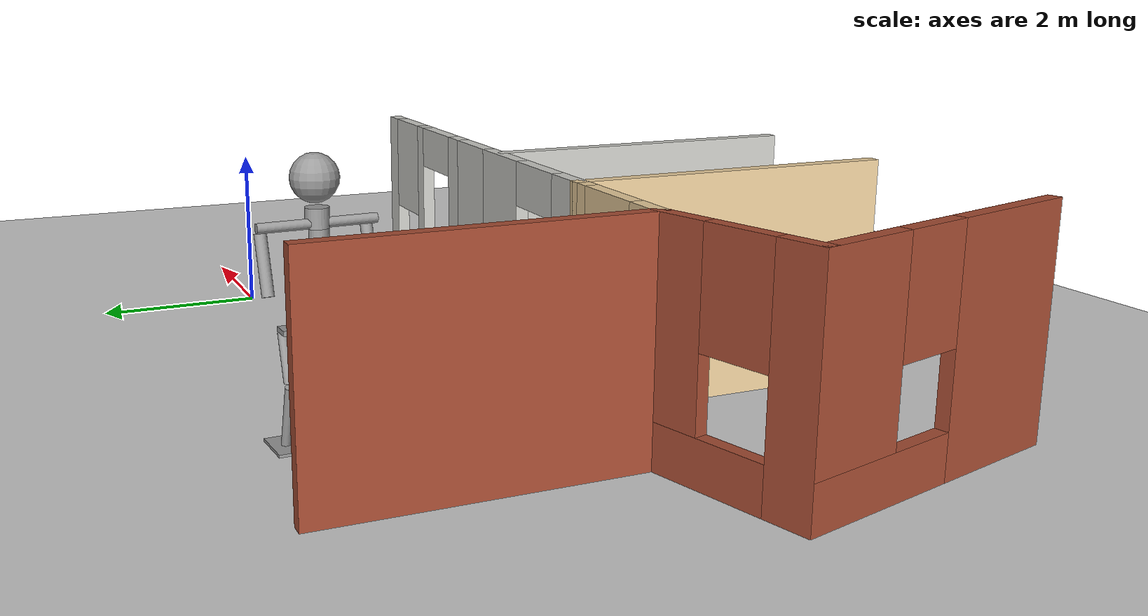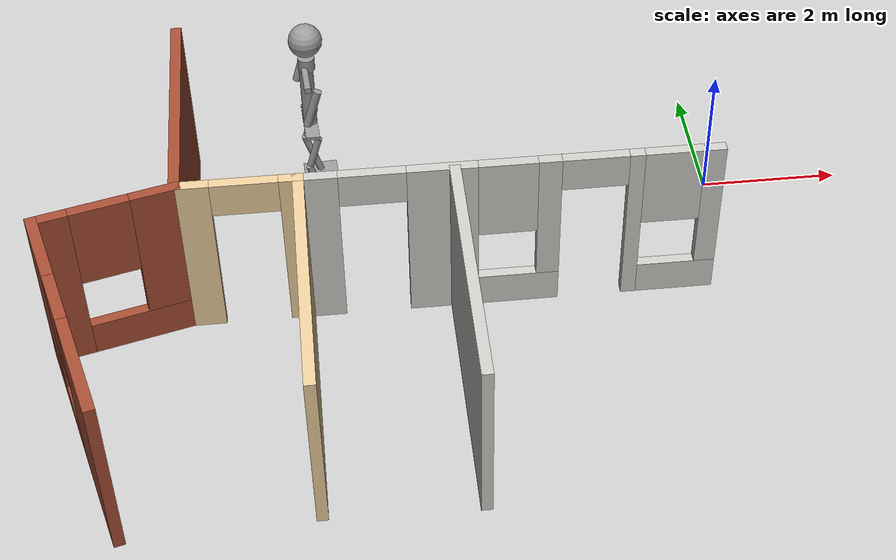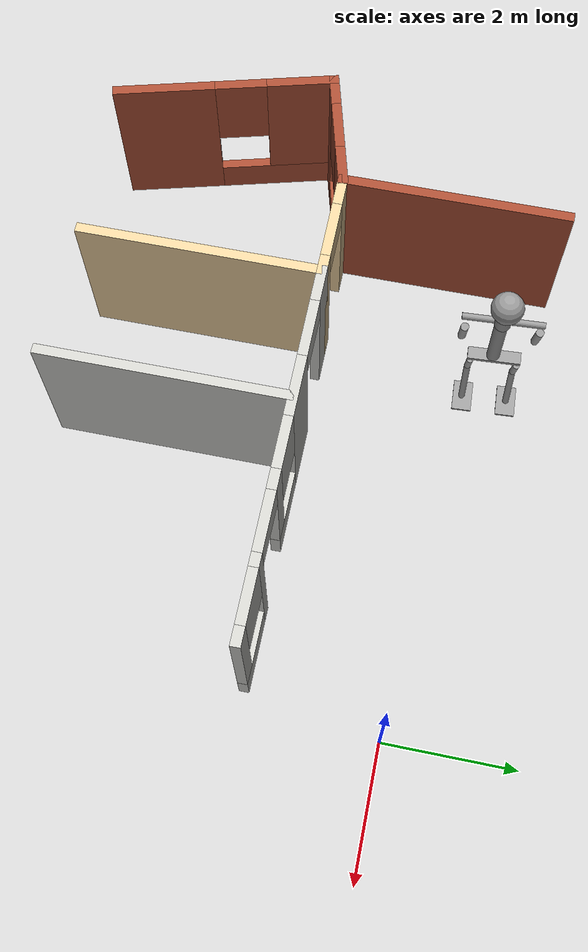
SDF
<sdf version="1.6">
 <world name="default">
  <model name="ground_plane">
   <static>1</static>
   <link name="link">
    <collision name="collision">
     <geometry><plane><normal>0 0 1</normal><size>100 100</size></plane></geometry>
     <surface><friction><ode><mu>100</mu><mu2>50</mu2></ode></friction></surface>
    </collision>
    <visual name="visual">
     <cast_shadows>0</cast_shadows>
     <geometry><plane><normal>0 0 1</normal><size>100 100</size></plane></geometry>
     <material>
      <script><uri>file://media/materials/scripts/gazebo.material</uri><name>Gazebo/Grey</name></script>
     </material>
    </visual>
   </link>
  </model>
  <model name="Building">
   <pose>-0.293126 -0.203944 0 0 -0 0</pose>
   <link name="Wall_11">
    <pose>-6.52017 -1.84669 0 0 -0 0</pose>
    <visual name="Wall_11_Visual_0">
     <pose>-0.613993 0 1.25 0 -0 0</pose>
     <geometry><box><size>0.522013 0.15 2.5</size></box></geometry>
     <material>
      <script><uri>file://media/materials/scripts/gazebo.material</uri><name>Gazebo/Grey</name></script>
      <ambient>0.921569 0.807843 0.615686 1</ambient>
     </material>
     <meta><layer>0</layer></meta>
    </visual>
    <collision name="Wall_11_Collision_0">
     <geometry><box><size>0.522013 0.15 2.5</size></box></geometry>
     <pose>-0.613993 0 1.25 0 -0 0</pose>
    </collision>
    <visual name="Wall_11_Visual_1">
     <pose>0.711007 0 1.25 0 -0 0</pose>
     <geometry><box><size>0.327987 0.15 2.5</size></box></geometry>
     <material>
      <script><uri>file://media/materials/scripts/gazebo.material</uri><name>Gazebo/Grey</name></script>
      <ambient>0.921569 0.807843 0.615686 1</ambient>
     </material>
     <meta><layer>0</layer></meta>
    </visual>
    <collision name="Wall_11_Collision_1">
     <geometry><box><size>0.327987 0.15 2.5</size></box></geometry>
     <pose>0.711007 0 1.25 0 -0 0</pose>
    </collision>
    <visual name="Wall_11_Visual_2">
     <pose>0.097013 0 2.25 0 -0 0</pose>
     <geometry><box><size>0.9 0.15 0.5</size></box></geometry>
     <material>
      <script><uri>file://media/materials/scripts/gazebo.material</uri><name>Gazebo/Grey</name></script>
      <ambient>0.921569 0.807843 0.615686 1</ambient>
     </material>
     <meta><layer>0</layer></meta>
    </visual>
    <collision name="Wall_11_Collision_2">
     <geometry><box><size>0.9 0.15 0.5</size></box></geometry>
     <pose>0.097013 0 2.25 0 -0 0</pose>
    </collision>
   </link>
   <link name="Wall_12">
    <collision name="Wall_12_Collision">
     <geometry><box><size>3.75 0.15 2.5</size></box></geometry>
     <pose>0 0 1.25 0 -0 0</pose>
    </collision>
    <visual name="Wall_12_Visual">
     <pose>0 0 1.25 0 -0 0</pose>
     <geometry><box><size>3.75 0.15 2.5</size></box></geometry>
     <material>
      <script><uri>file://media/materials/scripts/gazebo.material</uri><name>Gazebo/Grey</name></script>
      <ambient>0.921569 0.807843 0.615686 1</ambient>
     </material>
     <meta><layer>0</layer></meta>
    </visual>
    <pose>-5.72017 -3.64669 0 0 0 -1.5708</pose>
   </link>
   <link name="Wall_14">
    <pose>-2.92017 -1.84669 0 0 -0 0</pose>
    <visual name="Wall_14_Visual_0">
     <pose>-2.58082 0 1.25 0 -0 0</pose>
     <geometry><box><size>0.588363 0.15 2.5</size></box></geometry>
     <material>
      <script><uri>file://media/materials/scripts/gazebo.material</uri><name>Gazebo/CeilingTiled</name></script>
      <ambient>0.921569 0.807843 0.615686 1</ambient>
     </material>
     <meta><layer>0</layer></meta>
    </visual>
    <collision name="Wall_14_Collision_0">
     <geometry><box><size>0.588363 0.15 2.5</size></box></geometry>
     <pose>-2.58082 0 1.25 0 -0 0</pose>
    </collision>
    <visual name="Wall_14_Visual_1">
     <pose>-0.912337 0 1.25 0 -0 0</pose>
     <geometry><box><size>0.9486 0.15 2.5</size></box></geometry>
     <material>
      <script><uri>file://media/materials/scripts/gazebo.material</uri><name>Gazebo/CeilingTiled</name></script>
      <ambient>0.921569 0.807843 0.615686 1</ambient>
     </material>
     <meta><layer>0</layer></meta>
    </visual>
    <collision name="Wall_14_Collision_1">
     <geometry><box><size>0.9486 0.15 2.5</size></box></geometry>
     <pose>-0.912337 0 1.25 0 -0 0</pose>
    </collision>
    <visual name="Wall_14_Visual_2">
     <pose>1.67976 0 1.25 0 -0 0</pose>
     <geometry><box><size>0.208 0.15 2.5</size></box></geometry>
     <material>
      <script><uri>file://media/materials/scripts/gazebo.material</uri><name>Gazebo/CeilingTiled</name></script>
      <ambient>0.921569 0.807843 0.615686 1</ambient>
     </material>
     <meta><layer>0</layer></meta>
    </visual>
    <collision name="Wall_14_Collision_2">
     <geometry><box><size>0.208 0.15 2.5</size></box></geometry>
     <pose>1.67976 0 1.25 0 -0 0</pose>
    </collision>
    <visual name="Wall_14_Visual_3">
     <pose>0.118863 0 0.25 0 -0 0</pose>
     <geometry><box><size>1.1138 0.15 0.5</size></box></geometry>
     <material>
      <script><uri>file://media/materials/scripts/gazebo.material</uri><name>Gazebo/CeilingTiled</name></script>
      <ambient>0.921569 0.807843 0.615686 1</ambient>
     </material>
     <meta><layer>0</layer></meta>
    </visual>
    <collision name="Wall_14_Collision_3">
     <geometry><box><size>1.1138 0.15 0.5</size></box></geometry>
     <pose>0.118863 0 0.25 0 -0 0</pose>
    </collision>
    <visual name="Wall_14_Visual_4">
     <pose>2.32938 0 0.25 0 -0 0</pose>
     <geometry><box><size>1.09124 0.15 0.5</size></box></geometry>
     <material>
      <script><uri>file://media/materials/scripts/gazebo.material</uri><name>Gazebo/CeilingTiled</name></script>
      <ambient>0.921569 0.807843 0.615686 1</ambient>
     </material>
     <meta><layer>0</layer></meta>
    </visual>
    <collision name="Wall_14_Collision_4">
     <geometry><box><size>1.09124 0.15 0.5</size></box></geometry>
     <pose>2.32938 0 0.25 0 -0 0</pose>
    </collision>
    <visual name="Wall_14_Visual_5">
     <pose>0.518863 0 1.5 0 -0 0</pose>
     <geometry><box><size>0.3138 0.15 2</size></box></geometry>
     <material>
      <script><uri>file://media/materials/scripts/gazebo.material</uri><name>Gazebo/CeilingTiled</name></script>
      <ambient>0.921569 0.807843 0.615686 1</ambient>
     </material>
     <meta><layer>0</layer></meta>
    </visual>
    <collision name="Wall_14_Collision_5">
     <geometry><box><size>0.3138 0.15 2</size></box></geometry>
     <pose>0.518863 0 1.5 0 -0 0</pose>
    </collision>
    <visual name="Wall_14_Visual_6">
     <pose>0.518863 0 1.5 0 -0 0</pose>
     <geometry><box><size>0.3138 0.15 2</size></box></geometry>
     <material>
      <script><uri>file://media/materials/scripts/gazebo.material</uri><name>Gazebo/CeilingTiled</name></script>
      <ambient>0.921569 0.807843 0.615686 1</ambient>
     </material>
     <meta><layer>0</layer></meta>
    </visual>
    <collision name="Wall_14_Collision_6">
     <geometry><box><size>0.3138 0.15 2</size></box></geometry>
     <pose>0.518863 0 1.5 0 -0 0</pose>
    </collision>
    <visual name="Wall_14_Visual_7">
     <pose>2.72938 0 1.5 0 -0 0</pose>
     <geometry><box><size>0.291237 0.15 2</size></box></geometry>
     <material>
      <script><uri>file://media/materials/scripts/gazebo.material</uri><name>Gazebo/CeilingTiled</name></script>
      <ambient>0.921569 0.807843 0.615686 1</ambient>
     </material>
     <meta><layer>0</layer></meta>
    </visual>
    <collision name="Wall_14_Collision_7">
     <geometry><box><size>0.291237 0.15 2</size></box></geometry>
     <pose>2.72938 0 1.5 0 -0 0</pose>
    </collision>
    <visual name="Wall_14_Visual_8">
     <pose>-0.038037 0 1.9 0 -0 0</pose>
     <geometry><box><size>0.8 0.15 1.2</size></box></geometry>
     <material>
      <script><uri>file://media/materials/scripts/gazebo.material</uri><name>Gazebo/CeilingTiled</name></script>
      <ambient>0.921569 0.807843 0.615686 1</ambient>
     </material>
     <meta><layer>0</layer></meta>
    </visual>
    <collision name="Wall_14_Collision_8">
     <geometry><box><size>0.8 0.15 1.2</size></box></geometry>
     <pose>-0.038037 0 1.9 0 -0 0</pose>
    </collision>
    <visual name="Wall_14_Visual_9">
     <pose>2.18376 0 1.9 0 -0 0</pose>
     <geometry><box><size>0.8 0.15 1.2</size></box></geometry>
     <material>
      <script><uri>file://media/materials/scripts/gazebo.material</uri><name>Gazebo/CeilingTiled</name></script>
      <ambient>0.921569 0.807843 0.615686 1</ambient>
     </material>
     <meta><layer>0</layer></meta>
    </visual>
    <collision name="Wall_14_Collision_9">
     <geometry><box><size>0.8 0.15 1.2</size></box></geometry>
     <pose>2.18376 0 1.9 0 -0 0</pose>
    </collision>
    <visual name="Wall_14_Visual_10">
     <pose>-1.83664 0 2.25 0 -0 0</pose>
     <geometry><box><size>0.9 0.15 0.5</size></box></geometry>
     <material>
      <script><uri>file://media/materials/scripts/gazebo.material</uri><name>Gazebo/CeilingTiled</name></script>
      <ambient>0.921569 0.807843 0.615686 1</ambient>
     </material>
     <meta><layer>0</layer></meta>
    </visual>
    <collision name="Wall_14_Collision_10">
     <geometry><box><size>0.9 0.15 0.5</size></box></geometry>
     <pose>-1.83664 0 2.25 0 -0 0</pose>
    </collision>
    <visual name="Wall_14_Visual_11">
     <pose>1.12576 0 2.25 0 -0 0</pose>
     <geometry><box><size>0.9 0.15 0.5</size></box></geometry>
     <material>
      <script><uri>file://media/materials/scripts/gazebo.material</uri><name>Gazebo/CeilingTiled</name></script>
      <ambient>0.921569 0.807843 0.615686 1</ambient>
     </material>
     <meta><layer>0</layer></meta>
    </visual>
    <collision name="Wall_14_Collision_11">
     <geometry><box><size>0.9 0.15 0.5</size></box></geometry>
     <pose>1.12576 0 2.25 0 -0 0</pose>
    </collision>
    <visual name="Wall_14_Visual_12">
     <pose>1.12576 0 2.25 0 -0 0</pose>
     <geometry><box><size>0.9 0.15 0.5</size></box></geometry>
     <material>
      <script><uri>file://media/materials/scripts/gazebo.material</uri><name>Gazebo/CeilingTiled</name></script>
      <ambient>0.921569 0.807843 0.615686 1</ambient>
     </material>
     <meta><layer>0</layer></meta>
    </visual>
    <collision name="Wall_14_Collision_12">
     <geometry><box><size>0.9 0.15 0.5</size></box></geometry>
     <pose>1.12576 0 2.25 0 -0 0</pose>
    </collision>
   </link>
   <link name="Wall_19">
    <collision name="Wall_19_Collision">
     <geometry><box><size>3.75 0.15 2.5</size></box></geometry>
     <pose>0 0 1.25 0 -0 0</pose>
    </collision>
    <visual name="Wall_19_Visual">
     <pose>0 0 1.25 0 -0 0</pose>
     <geometry><box><size>3.75 0.15 2.5</size></box></geometry>
     <material>
      <script><uri>file://media/materials/scripts/gazebo.material</uri><name>Gazebo/CeilingTiled</name></script>
      <ambient>0.921569 0.807843 0.615686 1</ambient>
     </material>
     <meta><layer>0</layer></meta>
    </visual>
    <pose>-3.66538 -3.70743 0 0 0 -1.5708</pose>
   </link>
   <link name="Wall_4">
    <pose>-8.67361 -3.94343 0 0 -0 1.8326</pose>
    <visual name="Wall_4_Visual_0">
     <pose>-0.961066 0 1.25 0 -0 0</pose>
     <geometry><box><size>1.57787 0.15 2.5</size></box></geometry>
     <material>
      <script><uri>file://media/materials/scripts/gazebo.material</uri><name>Gazebo/Bricks</name></script>
      <ambient>1 1 1 1</ambient>
     </material>
     <meta><layer>0</layer></meta>
    </visual>
    <collision name="Wall_4_Collision_0">
     <geometry><box><size>1.57787 0.15 2.5</size></box></geometry>
     <pose>-0.961066 0 1.25 0 -0 0</pose>
    </collision>
    <visual name="Wall_4_Visual_1">
     <pose>0.788934 0 0.25 0 -0 0</pose>
     <geometry><box><size>1.92213 0.15 0.5</size></box></geometry>
     <material>
      <script><uri>file://media/materials/scripts/gazebo.material</uri><name>Gazebo/Bricks</name></script>
      <ambient>1 1 1 1</ambient>
     </material>
     <meta><layer>0</layer></meta>
    </visual>
    <collision name="Wall_4_Collision_1">
     <geometry><box><size>1.92213 0.15 0.5</size></box></geometry>
     <pose>0.788934 0 0.25 0 -0 0</pose>
    </collision>
    <visual name="Wall_4_Visual_2">
     <pose>1.18893 0 1.5 0 -0 0</pose>
     <geometry><box><size>1.12213 0.15 2</size></box></geometry>
     <material>
      <script><uri>file://media/materials/scripts/gazebo.material</uri><name>Gazebo/Bricks</name></script>
      <ambient>1 1 1 1</ambient>
     </material>
     <meta><layer>0</layer></meta>
    </visual>
    <collision name="Wall_4_Collision_2">
     <geometry><box><size>1.12213 0.15 2</size></box></geometry>
     <pose>1.18893 0 1.5 0 -0 0</pose>
    </collision>
    <visual name="Wall_4_Visual_3">
     <pose>0.227868 0 1.9 0 -0 0</pose>
     <geometry><box><size>0.8 0.15 1.2</size></box></geometry>
     <material>
      <script><uri>file://media/materials/scripts/gazebo.material</uri><name>Gazebo/Bricks</name></script>
      <ambient>1 1 1 1</ambient>
     </material>
     <meta><layer>0</layer></meta>
    </visual>
    <collision name="Wall_4_Collision_3">
     <geometry><box><size>0.8 0.15 1.2</size></box></geometry>
     <pose>0.227868 0 1.9 0 -0 0</pose>
    </collision>
   </link>
   <link name="Wall_5">
    <pose>-8.21365 -2.08609 0 0 -0 0.261799</pose>
    <visual name="Wall_5_Visual_0">
     <pose>-0.733309 0 1.25 0 -0 0</pose>
     <geometry><box><size>0.533382 0.15 2.5</size></box></geometry>
     <material>
      <script><uri>file://media/materials/scripts/gazebo.material</uri><name>Gazebo/Bricks</name></script>
      <ambient>1 1 1 1</ambient>
     </material>
     <meta><layer>0</layer></meta>
    </visual>
    <collision name="Wall_5_Collision_0">
     <geometry><box><size>0.533382 0.15 2.5</size></box></geometry>
     <pose>-0.733309 0 1.25 0 -0 0</pose>
    </collision>
    <visual name="Wall_5_Visual_1">
     <pose>0.266691 0 0.25 0 -0 0</pose>
     <geometry><box><size>1.46662 0.15 0.5</size></box></geometry>
     <material>
      <script><uri>file://media/materials/scripts/gazebo.material</uri><name>Gazebo/Bricks</name></script>
      <ambient>1 1 1 1</ambient>
     </material>
     <meta><layer>0</layer></meta>
    </visual>
    <collision name="Wall_5_Collision_1">
     <geometry><box><size>1.46662 0.15 0.5</size></box></geometry>
     <pose>0.266691 0 0.25 0 -0 0</pose>
    </collision>
    <visual name="Wall_5_Visual_2">
     <pose>0.666691 0 1.5 0 -0 0</pose>
     <geometry><box><size>0.666618 0.15 2</size></box></geometry>
     <material>
      <script><uri>file://media/materials/scripts/gazebo.material</uri><name>Gazebo/Bricks</name></script>
      <ambient>1 1 1 1</ambient>
     </material>
     <meta><layer>0</layer></meta>
    </visual>
    <collision name="Wall_5_Collision_2">
     <geometry><box><size>0.666618 0.15 2</size></box></geometry>
     <pose>0.666691 0 1.5 0 -0 0</pose>
    </collision>
    <visual name="Wall_5_Visual_3">
     <pose>-0.066618 0 1.9 0 -0 0</pose>
     <geometry><box><size>0.8 0.15 1.2</size></box></geometry>
     <material>
      <script><uri>file://media/materials/scripts/gazebo.material</uri><name>Gazebo/Bricks</name></script>
      <ambient>1 1 1 1</ambient>
     </material>
     <meta><layer>0</layer></meta>
    </visual>
    <collision name="Wall_5_Collision_3">
     <geometry><box><size>0.8 0.15 1.2</size></box></geometry>
     <pose>-0.066618 0 1.9 0 -0 0</pose>
    </collision>
   </link>
   <link name="Wall_6">
    <collision name="Wall_6_Collision">
     <geometry><box><size>3.5369 0.15 2.5</size></box></geometry>
     <pose>0 0 1.25 0 -0 0</pose>
    </collision>
    <visual name="Wall_6_Visual">
     <pose>0 0 1.25 0 -0 0</pose>
     <geometry><box><size>3.5369 0.15 2.5</size></box></geometry>
     <material>
      <script><uri>file://media/materials/scripts/gazebo.material</uri><name>Gazebo/Bricks</name></script>
      <ambient>1 1 1 1</ambient>
     </material>
     <meta><layer>0</layer></meta>
    </visual>
    <pose>-7.32475 -0.153243 0 0 -0 1.5735</pose>
   </link>
   <static>1</static>
  </model>
  <model name="HumanoidRobot">
   <model name="Untitled">
    <model name="HumanoidRobot">
     <link name="link_1">
      <pose>-0.173443 0.410402 2.12746 0 -0 0</pose>
      <inertial>
       <mass>0.94</mass>
       <inertia><ixx>0.1</ixx><ixy>0</ixy><ixz>0</ixz><iyy>0.1</iyy><iyz>0</iyz><izz>0.1</izz></inertia>
      </inertial>
      <visual name="visual">
       <geometry><sphere><radius>0.24</radius></sphere></geometry>
       <material>
        <lighting>1</lighting>
        <script><uri>file://media/materials/scripts/gazebo.material</uri><name>Gazebo/Grey</name></script>
        <shader type="pixel"><normal_map>__default__</normal_map></shader>
        <ambient>0.3 0.3 0.3 1</ambient>
        <diffuse>0.7 0.7 0.7 1</diffuse>
        <specular>0.01 0.01 0.01 1</specular>
        <emissive>0 0 0 1</emissive>
       </material>
      </visual>
      <collision name="collision">
       <geometry><sphere><radius>0.24</radius></sphere></geometry>
       <surface>
        <friction>
         <ode><mu>1</mu><mu2>1</mu2><fdir1>0 0 0</fdir1><slip1>0</slip1><slip2>0</slip2></ode>
         <torsional>
          <coefficient>1</coefficient>
          <patch_radius>0</patch_radius>
          <surface_radius>0</surface_radius>
          <use_patch_radius>1</use_patch_radius>
          <ode><slip>0</slip></ode>
         </torsional>
        </friction>
        <bounce><restitution_coefficient>0</restitution_coefficient><threshold>1e+06</threshold></bounce>
        <contact>
         <collide_without_contact>0</collide_without_contact>
         <collide_without_contact_bitmask>1</collide_without_contact_bitmask>
         <collide_bitmask>1</collide_bitmask>
         <ode>
          <soft_cfm>0</soft_cfm>
          <soft_erp>0.2</soft_erp>
          <kp>1e+13</kp>
          <kd>1</kd>
          <max_vel>0.01</max_vel>
          <min_depth>0</min_depth>
         </ode>
         <bullet>
          <split_impulse>1</split_impulse>
          <split_impulse_penetration_threshold>-0.01</split_impulse_penetration_threshold>
          <soft_cfm>0</soft_cfm>
          <soft_erp>0.2</soft_erp>
          <kp>1e+13</kp>
          <kd>1</kd>
         </bullet>
        </contact>
       </surface>
      </collision>
     </link>
     <link name="link_2">
      <pose>-0.183443 0.400402 1.74746 0 -0 0</pose>
      <inertial>
       <mass>1</mass>
       <inertia><ixx>0.145833</ixx><ixy>0</ixy><ixz>0</ixz><iyy>0.145833</iyy><iyz>0</iyz><izz>0.125</izz></inertia>
      </inertial>
      <visual name="visual">
       <geometry><cylinder><radius>0.12</radius><length>0.2</length></cylinder></geometry>
       <material>
        <lighting>1</lighting>
        <script><uri>file://media/materials/scripts/gazebo.material</uri><name>Gazebo/Grey</name></script>
        <shader type="pixel"><normal_map>__default__</normal_map></shader>
        <ambient>0.3 0.3 0.3 1</ambient>
        <diffuse>0.7 0.7 0.7 1</diffuse>
        <specular>0.01 0.01 0.01 1</specular>
        <emissive>0 0 0 1</emissive>
       </material>
      </visual>
      <collision name="collision">
       <geometry><cylinder><radius>0.12</radius><length>0.2</length></cylinder></geometry>
       <surface>
        <friction>
         <ode><mu>1</mu><mu2>1</mu2><fdir1>0 0 0</fdir1><slip1>0</slip1><slip2>0</slip2></ode>
         <torsional>
          <coefficient>1</coefficient>
          <patch_radius>0</patch_radius>
          <surface_radius>0</surface_radius>
          <use_patch_radius>1</use_patch_radius>
          <ode><slip>0</slip></ode>
         </torsional>
        </friction>
        <bounce><restitution_coefficient>0</restitution_coefficient><threshold>1e+06</threshold></bounce>
        <contact>
         <collide_without_contact>0</collide_without_contact>
         <collide_without_contact_bitmask>1</collide_without_contact_bitmask>
         <collide_bitmask>1</collide_bitmask>
         <ode>
          <soft_cfm>0</soft_cfm>
          <soft_erp>0.2</soft_erp>
          <kp>1e+13</kp>
          <kd>1</kd>
          <max_vel>0.01</max_vel>
          <min_depth>0</min_depth>
         </ode>
         <bullet>
          <split_impulse>1</split_impulse>
          <split_impulse_penetration_threshold>-0.01</split_impulse_penetration_threshold>
          <soft_cfm>0</soft_cfm>
          <soft_erp>0.2</soft_erp>
          <kp>1e+13</kp>
          <kd>1</kd>
         </bullet>
        </contact>
       </surface>
      </collision>
     </link>
     <link name="link_3">
      <pose>-0.218443 0.410402 1.69752 0 -0 0</pose>
      <inertial>
       <mass>1</mass>
       <inertia><ixx>0.145833</ixx><ixy>0</ixy><ixz>0</ixz><iyy>0.145833</iyy><iyz>0</iyz><izz>0.125</izz></inertia>
      </inertial>
      <visual name="visual">
       <pose>0 0 0 1.5707 -0 0</pose>
       <geometry><cylinder><radius>0.05</radius><length>1.2</length></cylinder></geometry>
       <material>
        <lighting>1</lighting>
        <script><uri>file://media/materials/scripts/gazebo.material</uri><name>Gazebo/Grey</name></script>
        <shader type="pixel"><normal_map>__default__</normal_map></shader>
        <ambient>0.3 0.3 0.3 1</ambient>
        <diffuse>0.7 0.7 0.7 1</diffuse>
        <specular>0.01 0.01 0.01 1</specular>
        <emissive>0 0 0 1</emissive>
       </material>
      </visual>
      <collision name="collision">
       <pose>0 0 0 1.5707 -0 0</pose>
       <geometry><cylinder><radius>0.05</radius><length>1.2</length></cylinder></geometry>
       <surface>
        <friction>
         <ode><mu>1</mu><mu2>1</mu2><fdir1>0 0 0</fdir1><slip1>0</slip1><slip2>0</slip2></ode>
         <torsional>
          <coefficient>1</coefficient>
          <patch_radius>0</patch_radius>
          <surface_radius>0</surface_radius>
          <use_patch_radius>1</use_patch_radius>
          <ode><slip>0</slip></ode>
         </torsional>
        </friction>
        <bounce><restitution_coefficient>0</restitution_coefficient><threshold>1e+06</threshold></bounce>
        <contact>
         <collide_without_contact>0</collide_without_contact>
         <collide_without_contact_bitmask>1</collide_without_contact_bitmask>
         <collide_bitmask>1</collide_bitmask>
         <ode>
          <soft_cfm>0</soft_cfm>
          <soft_erp>0.2</soft_erp>
          <kp>1e+13</kp>
          <kd>1</kd>
          <max_vel>0.01</max_vel>
          <min_depth>0</min_depth>
         </ode>
         <bullet>
          <split_impulse>1</split_impulse>
          <split_impulse_penetration_threshold>-0.01</split_impulse_penetration_threshold>
          <soft_cfm>0</soft_cfm>
          <soft_erp>0.2</soft_erp>
          <kp>1e+13</kp>
          <kd>1</kd>
         </bullet>
        </contact>
       </surface>
      </collision>
     </link>
     <link name="link_4">
      <pose>-0.173443 -0.129603 1.34313 0 -0 0</pose>
      <inertial>
       <mass>1</mass>
       <inertia><ixx>0.145833</ixx><ixy>0</ixy><ixz>0</ixz><iyy>0.145833</iyy><iyz>0</iyz><izz>0.125</izz></inertia>
      </inertial>
      <visual name="visual">
       <pose>0 0 0 0 0.3 0</pose>
       <geometry><cylinder><radius>0.06</radius><length>0.6</length></cylinder></geometry>
       <material>
        <lighting>1</lighting>
        <script><uri>file://media/materials/scripts/gazebo.material</uri><name>Gazebo/Grey</name></script>
        <shader type="pixel"><normal_map>__default__</normal_map></shader>
        <ambient>0.3 0.3 0.3 1</ambient>
        <diffuse>0.7 0.7 0.7 1</diffuse>
        <specular>0.01 0.01 0.01 1</specular>
        <emissive>0 0 0 1</emissive>
       </material>
      </visual>
      <collision name="collision">
       <pose>0 0 0 0 0.3 0</pose>
       <geometry><cylinder><radius>0.06</radius><length>0.6</length></cylinder></geometry>
       <surface>
        <friction>
         <ode><mu>1</mu><mu2>1</mu2><fdir1>0 0 0</fdir1><slip1>0</slip1><slip2>0</slip2></ode>
         <torsional>
          <coefficient>1</coefficient>
          <patch_radius>0</patch_radius>
          <surface_radius>0</surface_radius>
          <use_patch_radius>1</use_patch_radius>
          <ode><slip>0</slip></ode>
         </torsional>
        </friction>
        <bounce><restitution_coefficient>0</restitution_coefficient><threshold>1e+06</threshold></bounce>
        <contact>
         <collide_without_contact>0</collide_without_contact>
         <collide_without_contact_bitmask>1</collide_without_contact_bitmask>
         <collide_bitmask>1</collide_bitmask>
         <ode>
          <soft_cfm>0</soft_cfm>
          <soft_erp>0.2</soft_erp>
          <kp>1e+13</kp>
          <kd>1</kd>
          <max_vel>0.01</max_vel>
          <min_depth>0</min_depth>
         </ode>
         <bullet>
          <split_impulse>1</split_impulse>
          <split_impulse_penetration_threshold>-0.01</split_impulse_penetration_threshold>
          <soft_cfm>0</soft_cfm>
          <soft_erp>0.2</soft_erp>
          <kp>1e+13</kp>
          <kd>1</kd>
         </bullet>
        </contact>
       </surface>
      </collision>
     </link>
     <link name="link_4_clone">
      <pose>-0.224419 0.950407 1.34313 0 -0 0</pose>
      <inertial>
       <mass>1</mass>
       <inertia><ixx>0.145833</ixx><ixy>0</ixy><ixz>0</ixz><iyy>0.145833</iyy><iyz>0</iyz><izz>0.125</izz></inertia>
      </inertial>
      <visual name="visual">
       <pose>0 0 0 0 0.3 0</pose>
       <geometry><cylinder><radius>0.06</radius><length>0.6</length></cylinder></geometry>
       <material>
        <lighting>1</lighting>
        <script><uri>file://media/materials/scripts/gazebo.material</uri><name>Gazebo/Grey</name></script>
        <shader type="pixel"><normal_map>__default__</normal_map></shader>
        <ambient>0.3 0.3 0.3 1</ambient>
        <diffuse>0.7 0.7 0.7 1</diffuse>
        <specular>0.01 0.01 0.01 1</specular>
        <emissive>0 0 0 1</emissive>
       </material>
      </visual>
      <collision name="collision">
       <pose>0 0 0 0 0.3 0</pose>
       <geometry><cylinder><radius>0.06</radius><length>0.6</length></cylinder></geometry>
       <surface>
        <friction>
         <ode><mu>1</mu><mu2>1</mu2><fdir1>0 0 0</fdir1><slip1>0</slip1><slip2>0</slip2></ode>
         <torsional>
          <coefficient>1</coefficient>
          <patch_radius>0</patch_radius>
          <surface_radius>0</surface_radius>
          <use_patch_radius>1</use_patch_radius>
          <ode><slip>0</slip></ode>
         </torsional>
        </friction>
        <bounce><restitution_coefficient>0</restitution_coefficient><threshold>1e+06</threshold></bounce>
        <contact>
         <collide_without_contact>0</collide_without_contact>
         <collide_without_contact_bitmask>1</collide_without_contact_bitmask>
         <collide_bitmask>1</collide_bitmask>
         <ode>
          <soft_cfm>0</soft_cfm>
          <soft_erp>0.2</soft_erp>
          <kp>1e+13</kp>
          <kd>1</kd>
          <max_vel>0.01</max_vel>
          <min_depth>0</min_depth>
         </ode>
         <bullet>
          <split_impulse>1</split_impulse>
          <split_impulse_penetration_threshold>-0.01</split_impulse_penetration_threshold>
          <soft_cfm>0</soft_cfm>
          <soft_erp>0.2</soft_erp>
          <kp>1e+13</kp>
          <kd>1</kd>
         </bullet>
        </contact>
       </surface>
      </collision>
     </link>
     <link name="link_5">
      <pose>-0.193443 0.390402 1.14746 0 -0 0</pose>
      <inertial>
       <mass>1</mass>
       <inertia><ixx>0.145833</ixx><ixy>0</ixy><ixz>0</ixz><iyy>0.145833</iyy><iyz>0</iyz><izz>0.125</izz></inertia>
      </inertial>
      <visual name="visual">
       <geometry><cylinder><radius>0.1</radius><length>1</length></cylinder></geometry>
       <material>
        <lighting>1</lighting>
        <script><uri>file://media/materials/scripts/gazebo.material</uri><name>Gazebo/Grey</name></script>
        <shader type="pixel"><normal_map>__default__</normal_map></shader>
        <ambient>0.3 0.3 0.3 1</ambient>
        <diffuse>0.7 0.7 0.7 1</diffuse>
        <specular>0.01 0.01 0.01 1</specular>
        <emissive>0 0 0 1</emissive>
       </material>
      </visual>
      <collision name="collision">
       <geometry><cylinder><radius>0.1</radius><length>1</length></cylinder></geometry>
       <surface>
        <friction>
         <ode><mu>1</mu><mu2>1</mu2><fdir1>0 0 0</fdir1><slip1>0</slip1><slip2>0</slip2></ode>
         <torsional>
          <coefficient>1</coefficient>
          <patch_radius>0</patch_radius>
          <surface_radius>0</surface_radius>
          <use_patch_radius>1</use_patch_radius>
          <ode><slip>0</slip></ode>
         </torsional>
        </friction>
        <bounce><restitution_coefficient>0</restitution_coefficient><threshold>1e+06</threshold></bounce>
        <contact>
         <collide_without_contact>0</collide_without_contact>
         <collide_without_contact_bitmask>1</collide_without_contact_bitmask>
         <collide_bitmask>1</collide_bitmask>
         <ode>
          <soft_cfm>0</soft_cfm>
          <soft_erp>0.2</soft_erp>
          <kp>1e+13</kp>
          <kd>1</kd>
          <max_vel>0.01</max_vel>
          <min_depth>0</min_depth>
         </ode>
         <bullet>
          <split_impulse>1</split_impulse>
          <split_impulse_penetration_threshold>-0.01</split_impulse_penetration_threshold>
          <soft_cfm>0</soft_cfm>
          <soft_erp>0.2</soft_erp>
          <kp>1e+13</kp>
          <kd>1</kd>
         </bullet>
        </contact>
       </surface>
      </collision>
     </link>
     <link name="link_6">
      <pose>-0.193443 0.410402 0.672459 0 -0 0</pose>
      <inertial>
       <mass>1</mass>
       <inertia>
        <ixx>0.166667</ixx>
        <ixy>0</ixy>
        <ixz>0</ixz>
        <iyy>0.166667</iyy>
        <iyz>0</iyz>
        <izz>0.166667</izz>
       </inertia>
      </inertial>
      <visual name="visual">
       <geometry><box><size>0.2 0.8 0.05</size></box></geometry>
       <material>
        <lighting>1</lighting>
        <script><uri>file://media/materials/scripts/gazebo.material</uri><name>Gazebo/Grey</name></script>
        <shader type="pixel"><normal_map>__default__</normal_map></shader>
        <ambient>0.3 0.3 0.3 1</ambient>
        <diffuse>0.7 0.7 0.7 1</diffuse>
        <specular>0.01 0.01 0.01 1</specular>
        <emissive>0 0 0 1</emissive>
       </material>
      </visual>
      <collision name="collision">
       <geometry><box><size>0.2 0.8 0.05</size></box></geometry>
       <surface>
        <friction>
         <ode><mu>1</mu><mu2>1</mu2><fdir1>0 0 0</fdir1><slip1>0</slip1><slip2>0</slip2></ode>
         <torsional>
          <coefficient>1</coefficient>
          <patch_radius>0</patch_radius>
          <surface_radius>0</surface_radius>
          <use_patch_radius>1</use_patch_radius>
          <ode><slip>0</slip></ode>
         </torsional>
        </friction>
        <bounce><restitution_coefficient>0</restitution_coefficient><threshold>1e+06</threshold></bounce>
        <contact>
         <collide_without_contact>0</collide_without_contact>
         <collide_without_contact_bitmask>1</collide_without_contact_bitmask>
         <collide_bitmask>1</collide_bitmask>
         <ode>
          <soft_cfm>0</soft_cfm>
          <soft_erp>0.2</soft_erp>
          <kp>1e+13</kp>
          <kd>1</kd>
          <max_vel>0.01</max_vel>
          <min_depth>0</min_depth>
         </ode>
         <bullet>
          <split_impulse>1</split_impulse>
          <split_impulse_penetration_threshold>-0.01</split_impulse_penetration_threshold>
          <soft_cfm>0</soft_cfm>
          <soft_erp>0.2</soft_erp>
          <kp>1e+13</kp>
          <kd>1</kd>
         </bullet>
        </contact>
       </surface>
      </collision>
     </link>
     <link name="link_7">
      <pose>-0.18262 0.060402 0.393848 0 -0 0</pose>
      <inertial>
       <mass>1</mass>
       <inertia><ixx>0.145833</ixx><ixy>0</ixy><ixz>0</ixz><iyy>0.145833</iyy><iyz>0</iyz><izz>0.125</izz></inertia>
      </inertial>
      <visual name="visual">
       <pose>0 0 0 0 0.3 0</pose>
       <geometry><cylinder><radius>0.05</radius><length>0.5</length></cylinder></geometry>
       <material>
        <lighting>1</lighting>
        <script><uri>file://media/materials/scripts/gazebo.material</uri><name>Gazebo/Grey</name></script>
        <shader type="pixel"><normal_map>__default__</normal_map></shader>
        <ambient>0.3 0.3 0.3 1</ambient>
        <diffuse>0.7 0.7 0.7 1</diffuse>
        <specular>0.01 0.01 0.01 1</specular>
        <emissive>0 0 0 1</emissive>
       </material>
      </visual>
      <collision name="collision">
       <pose>0 0 0 0 0.3 0</pose>
       <geometry><cylinder><radius>0.05</radius><length>0.5</length></cylinder></geometry>
       <surface>
        <friction>
         <ode><mu>1</mu><mu2>1</mu2><fdir1>0 0 0</fdir1><slip1>0</slip1><slip2>0</slip2></ode>
         <torsional>
          <coefficient>1</coefficient>
          <patch_radius>0</patch_radius>
          <surface_radius>0</surface_radius>
          <use_patch_radius>1</use_patch_radius>
          <ode><slip>0</slip></ode>
         </torsional>
        </friction>
        <bounce><restitution_coefficient>0</restitution_coefficient><threshold>1e+06</threshold></bounce>
        <contact>
         <collide_without_contact>0</collide_without_contact>
         <collide_without_contact_bitmask>1</collide_without_contact_bitmask>
         <collide_bitmask>1</collide_bitmask>
         <ode>
          <soft_cfm>0</soft_cfm>
          <soft_erp>0.2</soft_erp>
          <kp>1e+13</kp>
          <kd>1</kd>
          <max_vel>0.01</max_vel>
          <min_depth>0</min_depth>
         </ode>
         <bullet>
          <split_impulse>1</split_impulse>
          <split_impulse_penetration_threshold>-0.01</split_impulse_penetration_threshold>
          <soft_cfm>0</soft_cfm>
          <soft_erp>0.2</soft_erp>
          <kp>1e+13</kp>
          <kd>1</kd>
         </bullet>
        </contact>
       </surface>
      </collision>
     </link>
     <link name="link_7_clone">
      <pose>-0.173443 0.760402 0.393849 0 -0 0</pose>
      <inertial>
       <mass>1</mass>
       <inertia><ixx>0.145833</ixx><ixy>0</ixy><ixz>0</ixz><iyy>0.145833</iyy><iyz>0</iyz><izz>0.125</izz></inertia>
      </inertial>
      <visual name="visual">
       <pose>0 0 0 0 0.3 0</pose>
       <geometry><cylinder><radius>0.05</radius><length>0.5</length></cylinder></geometry>
       <material>
        <lighting>1</lighting>
        <script><uri>file://media/materials/scripts/gazebo.material</uri><name>Gazebo/Grey</name></script>
        <shader type="pixel"><normal_map>__default__</normal_map></shader>
        <ambient>0.3 0.3 0.3 1</ambient>
        <diffuse>0.7 0.7 0.7 1</diffuse>
        <specular>0.01 0.01 0.01 1</specular>
        <emissive>0 0 0 1</emissive>
       </material>
      </visual>
      <collision name="collision">
       <pose>0 0 0 0 0.3 0</pose>
       <geometry><cylinder><radius>0.05</radius><length>0.5</length></cylinder></geometry>
       <surface>
        <friction>
         <ode><mu>1</mu><mu2>1</mu2><fdir1>0 0 0</fdir1><slip1>0</slip1><slip2>0</slip2></ode>
         <torsional>
          <coefficient>1</coefficient>
          <patch_radius>0</patch_radius>
          <surface_radius>0</surface_radius>
          <use_patch_radius>1</use_patch_radius>
          <ode><slip>0</slip></ode>
         </torsional>
        </friction>
        <bounce><restitution_coefficient>0</restitution_coefficient><threshold>1e+06</threshold></bounce>
        <contact>
         <collide_without_contact>0</collide_without_contact>
         <collide_without_contact_bitmask>1</collide_without_contact_bitmask>
         <collide_bitmask>1</collide_bitmask>
         <ode>
          <soft_cfm>0</soft_cfm>
          <soft_erp>0.2</soft_erp>
          <kp>1e+13</kp>
          <kd>1</kd>
          <max_vel>0.01</max_vel>
          <min_depth>0</min_depth>
         </ode>
         <bullet>
          <split_impulse>1</split_impulse>
          <split_impulse_penetration_threshold>-0.01</split_impulse_penetration_threshold>
          <soft_cfm>0</soft_cfm>
          <soft_erp>0.2</soft_erp>
          <kp>1e+13</kp>
          <kd>1</kd>
         </bullet>
        </contact>
       </surface>
      </collision>
     </link>
     <link name="link_8">
      <pose>-0.173443 0.060402 -0.208906 0 -0 0</pose>
      <inertial>
       <mass>1</mass>
       <inertia><ixx>0.145833</ixx><ixy>0</ixy><ixz>0</ixz><iyy>0.145833</iyy><iyz>0</iyz><izz>0.125</izz></inertia>
      </inertial>
      <visual name="visual">
       <pose>0 0 0 0 -0.3 0</pose>
       <geometry><cylinder><radius>0.05</radius><length>0.7</length></cylinder></geometry>
       <material>
        <lighting>1</lighting>
        <script><uri>file://media/materials/scripts/gazebo.material</uri><name>Gazebo/Grey</name></script>
        <shader type="pixel"><normal_map>__default__</normal_map></shader>
        <ambient>0.3 0.3 0.3 1</ambient>
        <diffuse>0.7 0.7 0.7 1</diffuse>
        <specular>0.01 0.01 0.01 1</specular>
        <emissive>0 0 0 1</emissive>
       </material>
      </visual>
      <collision name="collision">
       <pose>0 0 0 0 -0.3 0</pose>
       <geometry><cylinder><radius>0.05</radius><length>0.7</length></cylinder></geometry>
       <surface>
        <friction>
         <ode><mu>1</mu><mu2>1</mu2><fdir1>0 0 0</fdir1><slip1>0</slip1><slip2>0</slip2></ode>
         <torsional>
          <coefficient>1</coefficient>
          <patch_radius>0</patch_radius>
          <surface_radius>0</surface_radius>
          <use_patch_radius>1</use_patch_radius>
          <ode><slip>0</slip></ode>
         </torsional>
        </friction>
        <bounce><restitution_coefficient>0</restitution_coefficient><threshold>1e+06</threshold></bounce>
        <contact>
         <collide_without_contact>0</collide_without_contact>
         <collide_without_contact_bitmask>1</collide_without_contact_bitmask>
         <collide_bitmask>1</collide_bitmask>
         <ode>
          <soft_cfm>0</soft_cfm>
          <soft_erp>0.2</soft_erp>
          <kp>1e+13</kp>
          <kd>1</kd>
          <max_vel>0.01</max_vel>
          <min_depth>0</min_depth>
         </ode>
         <bullet>
          <split_impulse>1</split_impulse>
          <split_impulse_penetration_threshold>-0.01</split_impulse_penetration_threshold>
          <soft_cfm>0</soft_cfm>
          <soft_erp>0.2</soft_erp>
          <kp>1e+13</kp>
          <kd>1</kd>
         </bullet>
        </contact>
       </surface>
      </collision>
     </link>
     <link name="link_8_clone">
      <pose>-0.173443 0.760402 -0.208905 0 -0 0</pose>
      <inertial>
       <mass>1</mass>
       <inertia><ixx>0.145833</ixx><ixy>0</ixy><ixz>0</ixz><iyy>0.145833</iyy><iyz>0</iyz><izz>0.125</izz></inertia>
      </inertial>
      <visual name="visual">
       <pose>0 0 0 0 -0.3 0</pose>
       <geometry><cylinder><radius>0.05</radius><length>0.7</length></cylinder></geometry>
       <material>
        <lighting>1</lighting>
        <script><uri>file://media/materials/scripts/gazebo.material</uri><name>Gazebo/Grey</name></script>
        <shader type="pixel"><normal_map>__default__</normal_map></shader>
        <ambient>0.3 0.3 0.3 1</ambient>
        <diffuse>0.7 0.7 0.7 1</diffuse>
        <specular>0.01 0.01 0.01 1</specular>
        <emissive>0 0 0 1</emissive>
       </material>
      </visual>
      <collision name="collision">
       <pose>0 0 0 0 -0.3 0</pose>
       <geometry><cylinder><radius>0.05</radius><length>0.7</length></cylinder></geometry>
       <surface>
        <friction>
         <ode><mu>1</mu><mu2>1</mu2><fdir1>0 0 0</fdir1><slip1>0</slip1><slip2>0</slip2></ode>
         <torsional>
          <coefficient>1</coefficient>
          <patch_radius>0</patch_radius>
          <surface_radius>0</surface_radius>
          <use_patch_radius>1</use_patch_radius>
          <ode><slip>0</slip></ode>
         </torsional>
        </friction>
        <bounce><restitution_coefficient>0</restitution_coefficient><threshold>1e+06</threshold></bounce>
        <contact>
         <collide_without_contact>0</collide_without_contact>
         <collide_without_contact_bitmask>1</collide_without_contact_bitmask>
         <collide_bitmask>1</collide_bitmask>
         <ode>
          <soft_cfm>0</soft_cfm>
          <soft_erp>0.2</soft_erp>
          <kp>1e+13</kp>
          <kd>1</kd>
          <max_vel>0.01</max_vel>
          <min_depth>0</min_depth>
         </ode>
         <bullet>
          <split_impulse>1</split_impulse>
          <split_impulse_penetration_threshold>-0.01</split_impulse_penetration_threshold>
          <soft_cfm>0</soft_cfm>
          <soft_erp>0.2</soft_erp>
          <kp>1e+13</kp>
          <kd>1</kd>
         </bullet>
        </contact>
       </surface>
      </collision>
     </link>
     <link name="link_9">
      <pose>-0.073443 0.072902 -0.54305 0 -0 0</pose>
      <inertial>
       <mass>1</mass>
       <inertia>
        <ixx>0.166667</ixx>
        <ixy>0</ixy>
        <ixz>0</ixz>
        <iyy>0.166667</iyy>
        <iyz>0</iyz>
        <izz>0.166667</izz>
       </inertia>
      </inertial>
      <visual name="visual">
       <geometry><box><size>0.5 0.3 0.03</size></box></geometry>
       <material>
        <lighting>1</lighting>
        <script><uri>file://media/materials/scripts/gazebo.material</uri><name>Gazebo/Grey</name></script>
        <shader type="pixel"><normal_map>__default__</normal_map></shader>
        <ambient>0.3 0.3 0.3 1</ambient>
        <diffuse>0.7 0.7 0.7 1</diffuse>
        <specular>0.01 0.01 0.01 1</specular>
        <emissive>0 0 0 1</emissive>
       </material>
      </visual>
      <collision name="collision">
       <geometry><box><size>0.5 0.3 0.03</size></box></geometry>
       <surface>
        <friction>
         <ode><mu>1</mu><mu2>1</mu2><fdir1>0 0 0</fdir1><slip1>0</slip1><slip2>0</slip2></ode>
         <torsional>
          <coefficient>1</coefficient>
          <patch_radius>0</patch_radius>
          <surface_radius>0</surface_radius>
          <use_patch_radius>1</use_patch_radius>
          <ode><slip>0</slip></ode>
         </torsional>
        </friction>
        <bounce><restitution_coefficient>0</restitution_coefficient><threshold>1e+06</threshold></bounce>
        <contact>
         <collide_without_contact>0</collide_without_contact>
         <collide_without_contact_bitmask>1</collide_without_contact_bitmask>
         <collide_bitmask>1</collide_bitmask>
         <ode>
          <soft_cfm>0</soft_cfm>
          <soft_erp>0.2</soft_erp>
          <kp>1e+13</kp>
          <kd>1</kd>
          <max_vel>0.01</max_vel>
          <min_depth>0</min_depth>
         </ode>
         <bullet>
          <split_impulse>1</split_impulse>
          <split_impulse_penetration_threshold>-0.01</split_impulse_penetration_threshold>
          <soft_cfm>0</soft_cfm>
          <soft_erp>0.2</soft_erp>
          <kp>1e+13</kp>
          <kd>1</kd>
         </bullet>
        </contact>
       </surface>
      </collision>
     </link>
     <link name="link_9_clone">
      <pose>-0.073443 0.760402 -0.543049 0 -0 0</pose>
      <inertial>
       <mass>1</mass>
       <inertia>
        <ixx>0.166667</ixx>
        <ixy>0</ixy>
        <ixz>0</ixz>
        <iyy>0.166667</iyy>
        <iyz>0</iyz>
        <izz>0.166667</izz>
       </inertia>
      </inertial>
      <visual name="visual">
       <geometry><box><size>0.5 0.3 0.03</size></box></geometry>
       <material>
        <lighting>1</lighting>
        <script><uri>file://media/materials/scripts/gazebo.material</uri><name>Gazebo/Grey</name></script>
        <shader type="pixel"><normal_map>__default__</normal_map></shader>
        <ambient>0.3 0.3 0.3 1</ambient>
        <diffuse>0.7 0.7 0.7 1</diffuse>
        <specular>0.01 0.01 0.01 1</specular>
        <emissive>0 0 0 1</emissive>
       </material>
      </visual>
      <collision name="collision">
       <geometry><box><size>0.5 0.3 0.03</size></box></geometry>
       <surface>
        <friction>
         <ode><mu>1</mu><mu2>1</mu2><fdir1>0 0 0</fdir1><slip1>0</slip1><slip2>0</slip2></ode>
         <torsional>
          <coefficient>1</coefficient>
          <patch_radius>0</patch_radius>
          <surface_radius>0</surface_radius>
          <use_patch_radius>1</use_patch_radius>
          <ode><slip>0</slip></ode>
         </torsional>
        </friction>
        <bounce><restitution_coefficient>0</restitution_coefficient><threshold>1e+06</threshold></bounce>
        <contact>
         <collide_without_contact>0</collide_without_contact>
         <collide_without_contact_bitmask>1</collide_without_contact_bitmask>
         <collide_bitmask>1</collide_bitmask>
         <ode>
          <soft_cfm>0</soft_cfm>
          <soft_erp>0.2</soft_erp>
          <kp>1e+13</kp>
          <kd>1</kd>
          <max_vel>0.01</max_vel>
          <min_depth>0</min_depth>
         </ode>
         <bullet>
          <split_impulse>1</split_impulse>
          <split_impulse_penetration_threshold>-0.01</split_impulse_penetration_threshold>
          <soft_cfm>0</soft_cfm>
          <soft_erp>0.2</soft_erp>
          <kp>1e+13</kp>
          <kd>1</kd>
         </bullet>
        </contact>
       </surface>
      </collision>
     </link>
     <joint name="link_1_JOINT_0" type="fixed">
      <parent>link_1</parent>
      <child>link_2</child>
      <axis>
       <xyz>1 0 0</xyz>
       <use_parent_model_frame>0</use_parent_model_frame>
       <limit>
        <lower>-1.79769e+308</lower>
        <upper>1.79769e+308</upper>
        <effort>-1</effort>
        <velocity>-1</velocity>
       </limit>
       <dynamics>
        <spring_reference>0</spring_reference>
        <spring_stiffness>0</spring_stiffness>
        <damping>0</damping>
       </dynamics>
      </axis>
      <physics>
       <ode><limit><cfm>0</cfm><erp>0.2</erp></limit><suspension><cfm>0</cfm><erp>0.2</erp></suspension></ode>
      </physics>
     </joint>
     <joint name="link_2_JOINT_1" type="fixed">
      <parent>link_2</parent>
      <child>link_3</child>
      <axis>
       <xyz>1 0 0</xyz>
       <use_parent_model_frame>0</use_parent_model_frame>
       <limit>
        <lower>-1.79769e+308</lower>
        <upper>1.79769e+308</upper>
        <effort>-1</effort>
        <velocity>-1</velocity>
       </limit>
       <dynamics>
        <spring_reference>0</spring_reference>
        <spring_stiffness>0</spring_stiffness>
        <damping>0</damping>
       </dynamics>
      </axis>
      <physics>
       <ode><limit><cfm>0</cfm><erp>0.2</erp></limit><suspension><cfm>0</cfm><erp>0.2</erp></suspension></ode>
      </physics>
     </joint>
     <joint name="link_2_JOINT_4" type="fixed">
      <parent>link_2</parent>
      <child>link_5</child>
      <axis>
       <xyz>0 0 1</xyz>
       <use_parent_model_frame>0</use_parent_model_frame>
       <limit>
        <lower>-1.79769e+308</lower>
        <upper>1.79769e+308</upper>
        <effort>-1</effort>
        <velocity>-1</velocity>
       </limit>
       <dynamics>
        <spring_reference>0</spring_reference>
        <spring_stiffness>0</spring_stiffness>
        <damping>0</damping>
       </dynamics>
      </axis>
      <physics>
       <ode><limit><cfm>0</cfm><erp>0.2</erp></limit><suspension><cfm>0</cfm><erp>0.2</erp></suspension></ode>
      </physics>
     </joint>
     <joint name="link_3_JOINT_2" type="fixed">
      <parent>link_3</parent>
      <child>link_4</child>
      <axis>
       <xyz>1 0 0</xyz>
       <use_parent_model_frame>0</use_parent_model_frame>
       <limit>
        <lower>-1.79769e+308</lower>
        <upper>1.79769e+308</upper>
        <effort>-1</effort>
        <velocity>-1</velocity>
       </limit>
       <dynamics>
        <spring_reference>0</spring_reference>
        <spring_stiffness>0</spring_stiffness>
        <damping>0</damping>
       </dynamics>
      </axis>
      <physics>
       <ode><limit><cfm>0</cfm><erp>0.2</erp></limit><suspension><cfm>0</cfm><erp>0.2</erp></suspension></ode>
      </physics>
     </joint>
     <joint name="link_3_JOINT_3" type="fixed">
      <parent>link_3</parent>
      <child>link_4_clone</child>
      <axis>
       <xyz>1 0 0</xyz>
       <use_parent_model_frame>0</use_parent_model_frame>
       <limit>
        <lower>-1.79769e+308</lower>
        <upper>1.79769e+308</upper>
        <effort>-1</effort>
        <velocity>-1</velocity>
       </limit>
       <dynamics>
        <spring_reference>0</spring_reference>
        <spring_stiffness>0</spring_stiffness>
        <damping>0</damping>
       </dynamics>
      </axis>
      <physics>
       <ode><limit><cfm>0</cfm><erp>0.2</erp></limit><suspension><cfm>0</cfm><erp>0.2</erp></suspension></ode>
      </physics>
     </joint>
     <joint name="link_5_JOINT_5" type="fixed">
      <parent>link_5</parent>
      <child>link_6</child>
      <axis>
       <xyz>0 0 1</xyz>
       <use_parent_model_frame>0</use_parent_model_frame>
       <limit>
        <lower>-1.79769e+308</lower>
        <upper>1.79769e+308</upper>
        <effort>-1</effort>
        <velocity>-1</velocity>
       </limit>
       <dynamics>
        <spring_reference>0</spring_reference>
        <spring_stiffness>0</spring_stiffness>
        <damping>0</damping>
       </dynamics>
      </axis>
      <physics>
       <ode><limit><cfm>0</cfm><erp>0.2</erp></limit><suspension><cfm>0</cfm><erp>0.2</erp></suspension></ode>
      </physics>
     </joint>
     <joint name="link_6_JOINT_6" type="fixed">
      <parent>link_6</parent>
      <child>link_7</child>
      <axis>
       <xyz>0 1 0</xyz>
       <use_parent_model_frame>0</use_parent_model_frame>
       <limit>
        <lower>-1.79769e+308</lower>
        <upper>1.79769e+308</upper>
        <effort>-1</effort>
        <velocity>-1</velocity>
       </limit>
       <dynamics>
        <spring_reference>0</spring_reference>
        <spring_stiffness>0</spring_stiffness>
        <damping>0</damping>
        <friction>0</friction>
       </dynamics>
      </axis>
      <physics>
       <ode><limit><cfm>0</cfm><erp>0.2</erp></limit><suspension><cfm>0</cfm><erp>0.2</erp></suspension></ode>
      </physics>
     </joint>
     <joint name="link_6_JOINT_7" type="fixed">
      <parent>link_6</parent>
      <child>link_7_clone</child>
      <axis>
       <xyz>0 1 0</xyz>
       <use_parent_model_frame>0</use_parent_model_frame>
       <limit>
        <lower>-1.79769e+308</lower>
        <upper>1.79769e+308</upper>
        <effort>-1</effort>
        <velocity>-1</velocity>
       </limit>
       <dynamics>
        <spring_reference>0</spring_reference>
        <spring_stiffness>0</spring_stiffness>
        <damping>0</damping>
       </dynamics>
      </axis>
      <physics>
       <ode><limit><cfm>0</cfm><erp>0.2</erp></limit><suspension><cfm>0</cfm><erp>0.2</erp></suspension></ode>
      </physics>
     </joint>
     <joint name="link_7_JOINT_8" type="fixed">
      <parent>link_7</parent>
      <child>link_8</child>
      <axis>
       <xyz>0 1 0</xyz>
       <use_parent_model_frame>0</use_parent_model_frame>
       <limit>
        <lower>-1.79769e+308</lower>
        <upper>1.79769e+308</upper>
        <effort>-1</effort>
        <velocity>-1</velocity>
       </limit>
       <dynamics>
        <spring_reference>0</spring_reference>
        <spring_stiffness>0</spring_stiffness>
        <damping>0</damping>
       </dynamics>
      </axis>
      <physics>
       <ode><limit><cfm>0</cfm><erp>0.2</erp></limit><suspension><cfm>0</cfm><erp>0.2</erp></suspension></ode>
      </physics>
     </joint>
     <joint name="link_7_clone_JOINT_9" type="fixed">
      <parent>link_7_clone</parent>
      <child>link_8_clone</child>
      <axis>
       <xyz>0 1 0</xyz>
       <use_parent_model_frame>0</use_parent_model_frame>
       <limit>
        <lower>-1.79769e+308</lower>
        <upper>1.79769e+308</upper>
        <effort>-1</effort>
        <velocity>-1</velocity>
       </limit>
       <dynamics>
        <spring_reference>0</spring_reference>
        <spring_stiffness>0</spring_stiffness>
        <damping>0</damping>
       </dynamics>
      </axis>
      <physics>
       <ode><limit><cfm>0</cfm><erp>0.2</erp></limit><suspension><cfm>0</cfm><erp>0.2</erp></suspension></ode>
      </physics>
     </joint>
     <joint name="link_8_JOINT_10" type="fixed">
      <parent>link_8</parent>
      <child>link_9</child>
      <axis>
       <xyz>0 1 0</xyz>
       <use_parent_model_frame>0</use_parent_model_frame>
       <limit>
        <lower>-1.79769e+308</lower>
        <upper>1.79769e+308</upper>
        <effort>-1</effort>
        <velocity>-1</velocity>
       </limit>
       <dynamics>
        <spring_reference>0</spring_reference>
        <spring_stiffness>0</spring_stiffness>
        <damping>0</damping>
       </dynamics>
      </axis>
      <physics>
       <ode><limit><cfm>0</cfm><erp>0.2</erp></limit><suspension><cfm>0</cfm><erp>0.2</erp></suspension></ode>
      </physics>
     </joint>
     <joint name="link_8_clone_JOINT_11" type="fixed">
      <parent>link_8_clone</parent>
      <child>link_9_clone</child>
      <axis>
       <xyz>0 1 0</xyz>
       <use_parent_model_frame>0</use_parent_model_frame>
       <limit>
        <lower>-1.79769e+308</lower>
        <upper>1.79769e+308</upper>
        <effort>-1</effort>
        <velocity>-1</velocity>
       </limit>
       <dynamics>
        <spring_reference>0</spring_reference>
        <spring_stiffness>0</spring_stiffness>
        <damping>0</damping>
       </dynamics>
      </axis>
      <physics>
       <ode><limit><cfm>0</cfm><erp>0.2</erp></limit><suspension><cfm>0</cfm><erp>0.2</erp></suspension></ode>
      </physics>
     </joint>
     <static>0</static>
     <pose>-3e-06 -2e-06 -0 0 -0 0</pose>
    </model>
    <static>1</static>
    <pose>-3e-06 3e-06 0 0 -0 0</pose>
   </model>
   <static>1</static>
   <pose>-5.59748 0.249498 0.558047 3e-06 -0 0.058329</pose>
  </model>
 </world>
</sdf>
